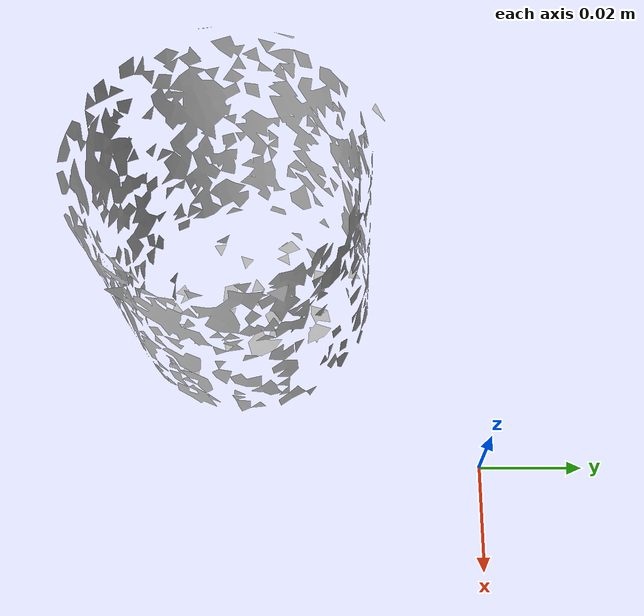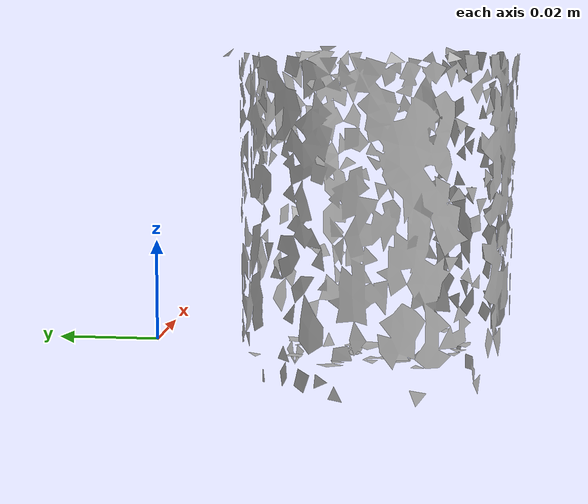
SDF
<?xml version="1.0" ?>
<sdf version="1.4">
  <model name='ycb_065-a_cups'>
    <link name='body'>
      <inertial>
        <mass>0.038</mass>
        <pose>-0.0305424345672 -0.0426683973882 0.0284575270085 0 0 0</pose>
        <inertia>
          <ixx>2.10173726358e-05</ixx>
          <ixy>-1.60411179819e-07</ixy>
          <ixz>3.26994464834e-07</ixz>
          <iyy>2.07012595933e-05</iyy>
          <iyz>8.47491276854e-07</iyz>
          <izz>1.76683865323e-05</izz>
        </inertia>
      </inertial>
      <visual name='ycb_065-a_cups_visual'>
        <pose>0 0 0 0 0 0</pose>
        <geometry>
          <mesh>
            <uri>model://ycb_065-a_cups/meshes/textured.dae</uri>
          </mesh>
        </geometry>
      </visual>
      <collision name='ycb_065-a_cups_collision'>
        <pose>0 0 0 0 0 0</pose>
        <geometry>
          <mesh>
            <uri>model://ycb_065-a_cups/meshes/nontextured.stl</uri>
          </mesh>
        </geometry>
        <max_contacts>10</max_contacts>
      </collision>
    </link>
  </model>
</sdf>
